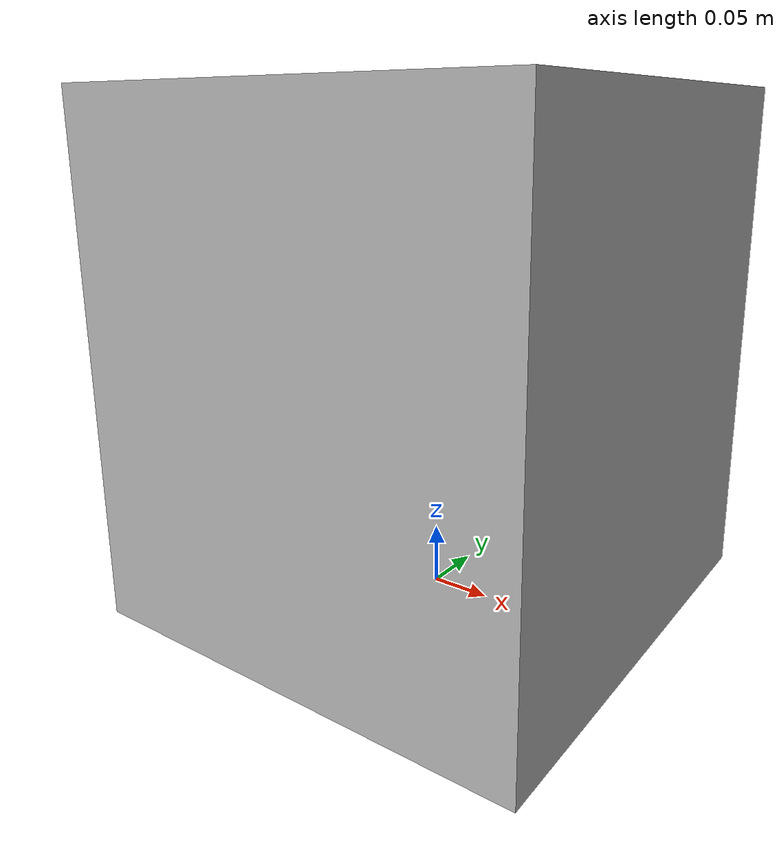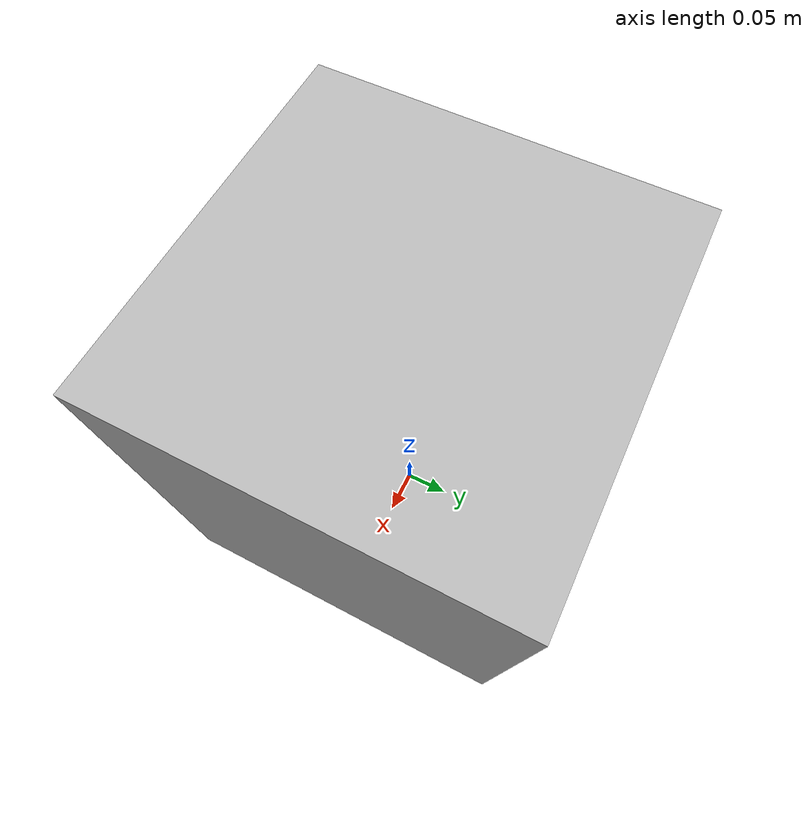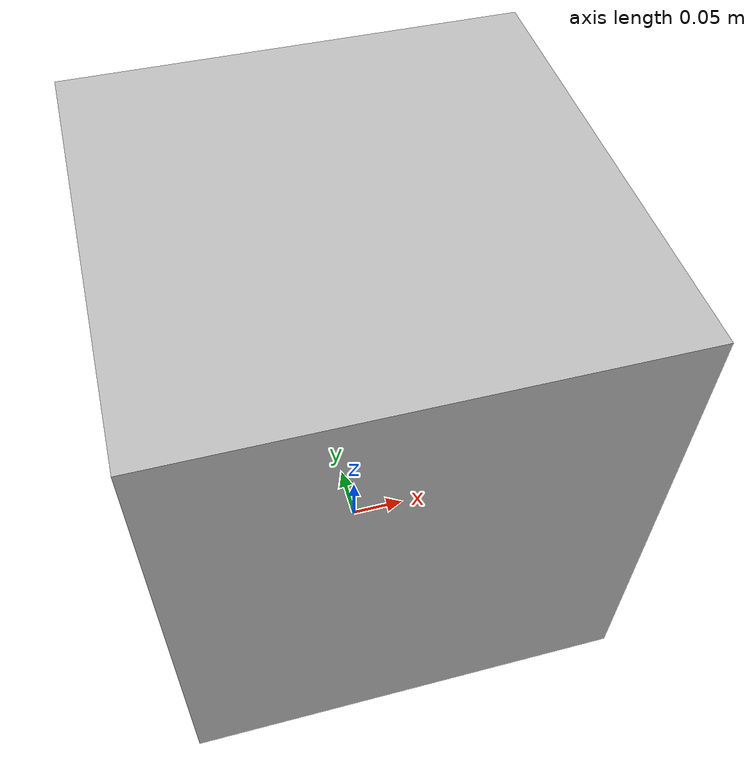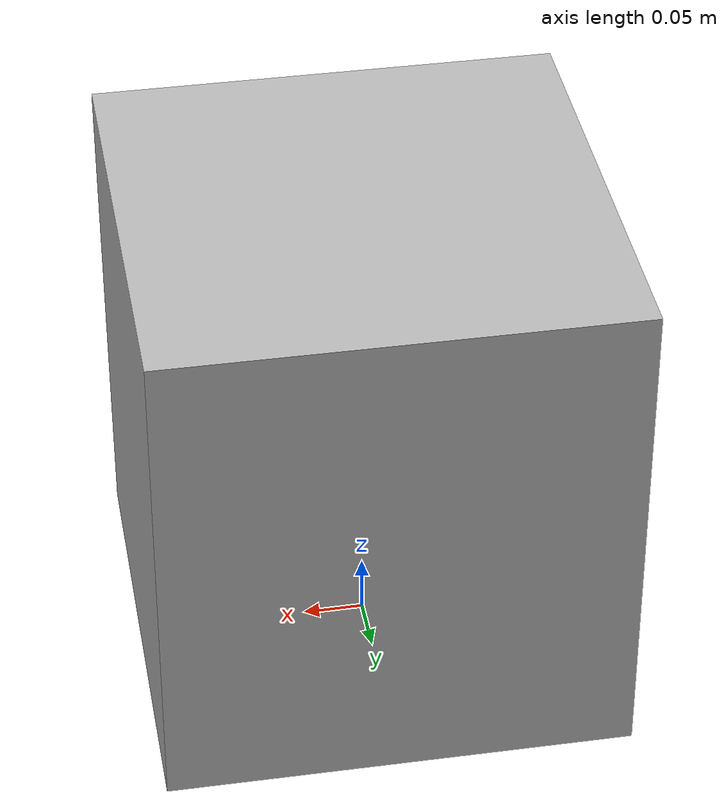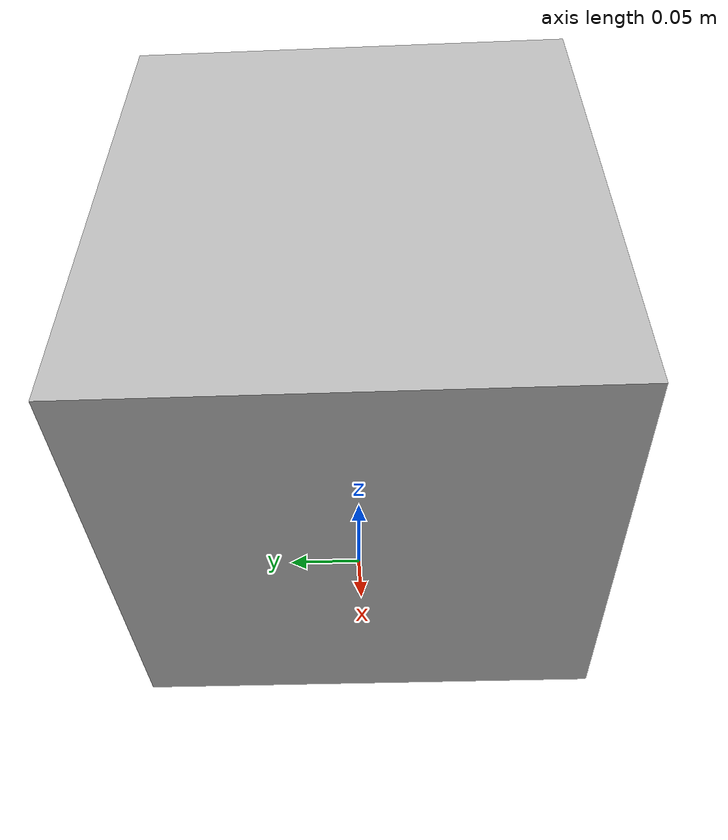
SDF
<sdf version="1.6">
	<model name="msj_platform_shoulder_left">
		<link name="base">
			<self_collide>false</self_collide>
			<pose frame="">-0.009732465658065003 0.009654678587937914 0.055659455953168714 0.0 -0.0 0.0</pose>
			<inertial>
				<pose frame="">0.0 0.0 0.0 0 0 0</pose>
				<mass>15.94031980363323</mass>
				<inertia>
					<ixx>0.3724832414054924</ixx>
					<ixy>0.020444436970846285</ixy>
					<ixz>0.05874260333490311</ixz>
					<iyy>0.37277070757060865</iyy>
					<iyz>-0.05866402391784025</iyz>
					<izz>0.3296869252708049</izz>
				</inertia>
			</inertial>
			<collision name="base_collision">
				<geometry>
					<mesh>
						<uri>model://msj_platform_shoulder_left/meshes/collisions/base.stl</uri>
						<scale>0.001 0.001 0.001</scale>
					</mesh>
				</geometry>
			</collision>
			<visual name="base_visual">
				<geometry>
					<mesh>
						<uri>model://msj_platform_shoulder_left/meshes/visuals/base.stl</uri>
						<scale>0.001 0.001 0.001</scale>
					</mesh>
				</geometry>
			</visual>
		</link>
		<link name="top">
			<self_collide>false</self_collide>
			<pose frame="">0.0049030063714451694 8.088408787240716e-06 0.1929546245207351 0.0 -0.0 0.0</pose>
			<inertial>
				<pose frame="">0.0 0.0 0.0 0 0 0</pose>
				<mass>1.2998460469863946</mass>
				<inertia>
					<ixx>0.04982307367519626</ixx>
					<ixy>-3.6584767202794743e-06</ixy>
					<ixz>-0.0012199110402397134</ixz>
					<iyy>0.049852895414610014</iyy>
					<iyz>-5.17680113475702e-06</iyz>
					<izz>0.0011169401721166437</izz>
				</inertia>
			</inertial>
			<collision name="top_collision">
				<geometry>
					<mesh>
						<uri>model://msj_platform_shoulder_left/meshes/collisions/top.stl</uri>
						<scale>0.001 0.001 0.001</scale>
					</mesh>
				</geometry>
			</collision>
			<visual name="top_visual">
				<geometry>
					<mesh>
						<uri>model://msj_platform_shoulder_left/meshes/visuals/top.stl</uri>
						<scale>0.001 0.001 0.001</scale>
					</mesh>
				</geometry>
			</visual>
		</link>
		<link name="sphere_link1">
			<self_collide>false</self_collide>
			<pose frame="">0.00524196306571263 -0.00022520213138173376 0.1051841324021821 0.0 -0.0 0.0</pose>
			<inertial>
				<pose frame="">0.0 0.0 0.0 0 0 0</pose>
				<mass>0.09036362653441243</mass>
				<inertia>
					<ixx>0.0010068523868196958</ixx>
					<ixy>1.0667437453229043e-07</ixy>
					<ixz>-4.982391359211661e-05</ixz>
					<iyy>0.001009330831642616</iyy>
					<iyz>2.1405056453213555e-06</iyz>
					<izz>9.579205186028617e-06</izz>
				</inertia>
			</inertial>
			<collision name="sphere_link1_collision">
				<geometry>
					<mesh>
						<uri>model://msj_platform_shoulder_left/meshes/collisions/sphere_link1.stl</uri>
						<scale>0.001 0.001 0.001</scale>
					</mesh>
				</geometry>
			</collision>
			<visual name="sphere_link1_visual">
				<geometry>
					<mesh>
						<uri>model://msj_platform_shoulder_left/meshes/visuals/sphere_link1.stl</uri>
						<scale>0.001 0.001 0.001</scale>
					</mesh>
				</geometry>
			</visual>
		</link>
		<link name="sphere_link2">
			<self_collide>false</self_collide>
			<pose frame="">0.00524196306571263 -0.0002252021313817329 0.1051841324021821 0.0 -0.0 0.0</pose>
			<inertial>
				<pose frame="">0.0 0.0 0.0 0 0 0</pose>
				<mass>0.007113171768014984</mass>
				<inertia>
					<ixx>7.880090352797851e-05</ixx>
					<ixy>8.397108199334418e-09</ixy>
					<ixz>-3.921999029117056e-06</ixz>
					<iyy>7.899599976768361e-05</iyy>
					<iyz>1.684946134801059e-07</iyz>
					<izz>2.983498716838762e-07</izz>
				</inertia>
			</inertial>
			<collision name="sphere_link2_collision">
				<geometry>
					<mesh>
						<uri>model://msj_platform_shoulder_left/meshes/collisions/sphere_link2.stl</uri>
						<scale>0.001 0.001 0.001</scale>
					</mesh>
				</geometry>
			</collision>
			<visual name="sphere_link2_visual">
				<geometry>
					<mesh>
						<uri>model://msj_platform_shoulder_left/meshes/visuals/sphere_link2.stl</uri>
						<scale>0.001 0.001 0.001</scale>
					</mesh>
				</geometry>
			</visual>
		</link>
		<joint name="sphere_axis0" type="revolute">
			<parent>base</parent>
			<child>sphere_link1</child>
			<pose frame="">2.4564794642856213e-14 3.816391647148976e-18 1.7763568394002505e-17 0 0 0</pose>
			<axis>
				<xyz>0.9999999788668079 -2.2206737415111714e-16 -0.0002055878983349691</xyz>
				<limit>
					<lower>-3.141592653589793</lower>
					<upper>3.141592653589793</upper>
				</limit>
				<use_parent_model_frame>0</use_parent_model_frame>
			</axis>
		</joint>
		<joint name="sphere_axis1" type="revolute">
			<parent>sphere_link1</parent>
			<child>sphere_link2</child>
			<pose frame="">2.220446049250313e-18 -3.469446951953614e-18 0.0 0 0 0</pose>
			<axis>
				<xyz>4.507072784446687e-16 0.9999999999999996 -1.110494075168278e-16</xyz>
				<limit>
					<lower>-3.141592653589793</lower>
					<upper>3.141592653589793</upper>
				</limit>
				<use_parent_model_frame>0</use_parent_model_frame>
			</axis>
		</joint>
		<joint name="sphere_axis2" type="revolute">
			<parent>sphere_link2</parent>
			<child>top</child>
			<pose frame="">0.0003389566942674621 -0.00023329054016897174 -0.08777049211855302 0 0 0</pose>
			<axis>
				<xyz>0.00020558789825429868 1.1102230246251565e-16 0.9999999788668078</xyz>
				<limit>
					<lower>-3.141592653589793</lower>
					<upper>3.141592653589793</upper>
				</limit>
				<use_parent_model_frame>0</use_parent_model_frame>
			</axis>
		</joint>
		<plugin filename="libcardsflow_gazebo_plugin.so" name="cardsflow_gazebo_plugin" />
	</model>
</sdf>
